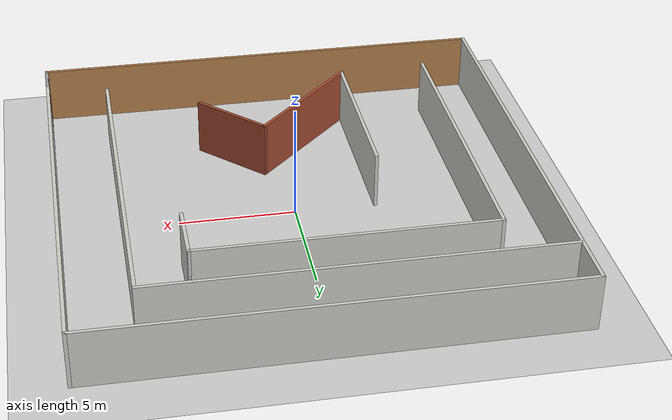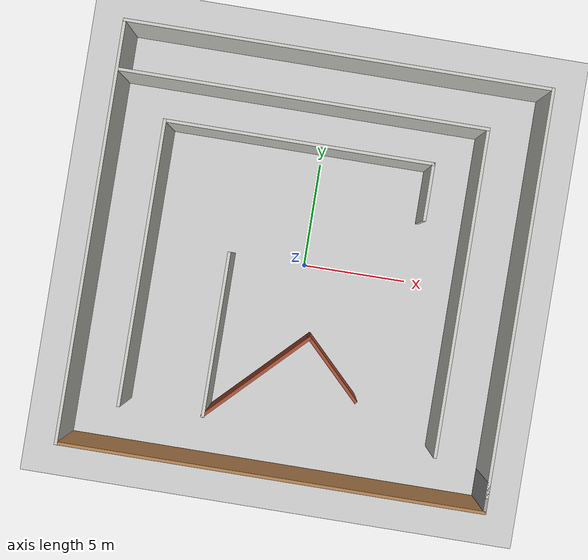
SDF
<sdf version="1.7">
 <world name="default">
  <light name="sun" type="directional">
   <pose>0 0 10 0 -0 0</pose>
   <diffuse>0.8 0.8 0.8 1</diffuse>
   <specular>0.2 0.2 0.2 1</specular>
   <attenuation>
    <range>1000</range>
    <constant>0.9</constant>
    <linear>0.01</linear>
    <quadratic>0.001</quadratic>
   </attenuation>
   <direction>-0.5 0.1 -0.9</direction>
   <spot><inner_angle>0</inner_angle><outer_angle>0</outer_angle><falloff>0</falloff></spot>
  </light>
  <model name="ground_plane">
   <static>1</static>
   <link name="link">
    <collision name="collision">
     <geometry><plane><normal>0 0 1</normal><size>100 100</size></plane></geometry>
     <surface>
      <contact><collide_bitmask>65535</collide_bitmask></contact>
      <friction><ode><mu>100</mu><mu2>50</mu2></ode></friction>
     </surface>
    </collision>
    <visual name="visual">
     <cast_shadows>0</cast_shadows>
     <geometry><plane><normal>0 0 1</normal><size>100 100</size></plane></geometry>
     <material>
      <script><uri>file://media/materials/scripts/gazebo.material</uri><name>Gazebo/Grey</name></script>
     </material>
    </visual>
   </link>
  </model>
  <gravity>0 0 -9.8</gravity>
  <magnetic_field>6e-06 2.3e-05 -4.2e-05</magnetic_field>
  <atmosphere type="adiabatic"/>
  <physics type="ode">
   <max_step_size>0.001</max_step_size>
   <real_time_factor>1</real_time_factor>
   <real_time_update_rate>1000</real_time_update_rate>
  </physics>
  <scene><ambient>0.4 0.4 0.4 1</ambient><background>0.7 0.7 0.7 1</background><shadows>1</shadows></scene>
  <spherical_coordinates>
   <surface_model>EARTH_WGS84</surface_model>
   <latitude_deg>0</latitude_deg>
   <longitude_deg>0</longitude_deg>
   <elevation>0</elevation>
   <heading_deg>0</heading_deg>
  </spherical_coordinates>
  <model name="Untitled">
   <pose>0.0221 -0.0526 0 0 -0 0</pose>
   <link name="Wall_1">
    <collision name="Wall_1_Collision">
     <geometry><box><size>19.25 0.15 2.5</size></box></geometry>
     <pose>0 0 1.25 0 -0 0</pose>
    </collision>
    <visual name="Wall_1_Visual">
     <pose>0 0 1.25 0 -0 0</pose>
     <geometry><box><size>19.25 0.15 2.5</size></box></geometry>
     <material>
      <script><uri>file://media/materials/scripts/gazebo.material</uri><name>Gazebo/CeilingTiled</name></script>
      <ambient>1 1 1 1</ambient>
     </material>
     <meta><layer>0</layer></meta>
    </visual>
    <pose>10.05 0.375 0 0 -0 1.5708</pose>
   </link>
   <link name="Wall_11">
    <collision name="Wall_11_Collision">
     <geometry><box><size>13.5 0.15 2.5</size></box></geometry>
     <pose>0 0 1.25 0 -0 0</pose>
    </collision>
    <visual name="Wall_11_Visual">
     <pose>0 0 1.25 0 -0 0</pose>
     <geometry><box><size>13.5 0.15 2.5</size></box></geometry>
     <material>
      <script><uri>file://media/materials/scripts/gazebo.material</uri><name>Gazebo/CeilingTiled</name></script>
      <ambient>0.760784 0.662745 0.627451 1</ambient>
     </material>
     <meta><layer>0</layer></meta>
    </visual>
    <pose>-7.47151 -1.04756 0 0 -0 1.5708</pose>
   </link>
   <link name="Wall_12">
    <collision name="Wall_12_Collision">
     <geometry><box><size>12.75 0.15 2.5</size></box></geometry>
     <pose>0 0 1.25 0 -0 0</pose>
    </collision>
    <visual name="Wall_12_Visual">
     <pose>0 0 1.25 0 -0 0</pose>
     <geometry><box><size>12.75 0.15 2.5</size></box></geometry>
     <material>
      <script><uri>file://media/materials/scripts/gazebo.material</uri><name>Gazebo/CeilingTiled</name></script>
      <ambient>1 1 1 1</ambient>
     </material>
     <meta><layer>0</layer></meta>
    </visual>
    <pose>-1.17151 5.62744 0 0 -0 0</pose>
   </link>
   <link name="Wall_13">
    <collision name="Wall_13_Collision">
     <geometry><box><size>2.75 0.15 2.5</size></box></geometry>
     <pose>0 0 1.25 0 -0 0</pose>
    </collision>
    <visual name="Wall_13_Visual">
     <pose>0 0 1.25 0 -0 0</pose>
     <geometry><box><size>2.75 0.15 2.5</size></box></geometry>
     <material>
      <script><uri>file://media/materials/scripts/gazebo.material</uri><name>Gazebo/CeilingTiled</name></script>
      <ambient>1 1 1 1</ambient>
     </material>
     <meta><layer>0</layer></meta>
    </visual>
    <pose>5.12849 4.32744 0 0 -0 -1.5708</pose>
   </link>
   <link name="Wall_17">
    <collision name="Wall_17_Collision">
     <geometry><box><size>7.75 0.15 2.5</size></box></geometry>
     <pose>0 0 1.25 0 -0 0</pose>
    </collision>
    <visual name="Wall_17_Visual">
     <pose>0 0 1.25 0 -0 0</pose>
     <geometry><box><size>7.75 0.15 2.5</size></box></geometry>
     <material>
      <script><uri>file://media/materials/scripts/gazebo.material</uri><name>Gazebo/CeilingTiled</name></script>
      <ambient>1 1 1 1</ambient>
     </material>
     <meta><layer>0</layer></meta>
    </visual>
    <pose>-3.53972 -3.77437 0 0 -0 -1.5708</pose>
   </link>
   <link name="Wall_18">
    <collision name="Wall_18_Collision">
     <geometry><box><size>6.25 0.15 2.5</size></box></geometry>
     <pose>0 0 1.25 0 -0 0</pose>
    </collision>
    <visual name="Wall_18_Visual">
     <pose>0 0 1.25 0 -0 0</pose>
     <geometry><box><size>6.25 0.15 2.5</size></box></geometry>
     <material>
      <script><uri>file://media/materials/scripts/gazebo.material</uri><name>Gazebo/Bricks</name></script>
      <ambient>1 1 1 1</ambient>
     </material>
     <meta><layer>0</layer></meta>
    </visual>
    <pose>-1.38304 -5.4177 0 0 -0 0.785398</pose>
   </link>
   <link name="Wall_19">
    <collision name="Wall_19_Collision">
     <geometry><box><size>3.75 0.15 2.5</size></box></geometry>
     <pose>0 0 1.25 0 -0 0</pose>
    </collision>
    <visual name="Wall_19_Visual">
     <pose>0 0 1.25 0 -0 0</pose>
     <geometry><box><size>3.75 0.15 2.5</size></box></geometry>
     <material>
      <script><uri>file://media/materials/scripts/gazebo.material</uri><name>Gazebo/Bricks</name></script>
      <ambient>1 1 1 1</ambient>
     </material>
     <meta><layer>0</layer></meta>
    </visual>
    <pose>2.04643 -4.53381 0 0 -0 -0.785398</pose>
   </link>
   <link name="Wall_2">
    <collision name="Wall_2_Collision">
     <geometry><box><size>20.25 0.15 2.5</size></box></geometry>
     <pose>0 0 1.25 0 -0 0</pose>
    </collision>
    <visual name="Wall_2_Visual">
     <pose>0 0 1.25 0 -0 0</pose>
     <geometry><box><size>20.25 0.15 2.5</size></box></geometry>
     <material>
      <script><uri>file://media/materials/scripts/gazebo.material</uri><name>Gazebo/CeilingTiled</name></script>
      <ambient>1 1 1 1</ambient>
     </material>
     <meta><layer>0</layer></meta>
    </visual>
    <pose>-0 9.925 0 0 -0 3.14159</pose>
   </link>
   <link name="Wall_3">
    <collision name="Wall_3_Collision">
     <geometry><box><size>20 0.15 2.5</size></box></geometry>
     <pose>0 0 1.25 0 -0 0</pose>
    </collision>
    <visual name="Wall_3_Visual">
     <pose>0 0 1.25 0 -0 0</pose>
     <geometry><box><size>20 0.15 2.5</size></box></geometry>
     <material>
      <script><uri>file://media/materials/scripts/gazebo.material</uri><name>Gazebo/CeilingTiled</name></script>
      <ambient>1 1 1 1</ambient>
     </material>
     <meta><layer>0</layer></meta>
    </visual>
    <pose>-10.05 -0 0 0 -0 -1.5708</pose>
   </link>
   <link name="Wall_5">
    <collision name="Wall_5_Collision">
     <geometry><box><size>20.25 0.15 2.5</size></box></geometry>
     <pose>0 0 1.25 0 -0 0</pose>
    </collision>
    <visual name="Wall_5_Visual">
     <pose>0 0 1.25 0 -0 0</pose>
     <geometry><box><size>20.25 0.15 2.5</size></box></geometry>
     <material>
      <script><uri>file://media/materials/scripts/gazebo.material</uri><name>Gazebo/Wood</name></script>
      <ambient>1 1 1 1</ambient>
     </material>
     <meta><layer>0</layer></meta>
    </visual>
    <pose>-0 -9.925 0 0 -0 0</pose>
   </link>
   <link name="Wall_6">
    <collision name="Wall_6_Collision">
     <geometry><box><size>1.5 0.15 2.5</size></box></geometry>
     <pose>0 0 1.25 0 -0 0</pose>
    </collision>
    <visual name="Wall_6_Visual">
     <pose>0 0 1.25 0 -0 0</pose>
     <geometry><box><size>1.5 0.15 2.5</size></box></geometry>
     <material>
      <script><uri>file://media/materials/scripts/gazebo.material</uri><name>Gazebo/Grey</name></script>
      <ambient>1 1 1 1</ambient>
     </material>
     <meta><layer>0</layer></meta>
    </visual>
    <pose>10.05 -9.25 0 0 -0 1.5708</pose>
   </link>
   <link name="Wall_8">
    <collision name="Wall_8_Collision">
     <geometry><box><size>17.5 0.15 2.5</size></box></geometry>
     <pose>0 0 1.25 0 -0 0</pose>
    </collision>
    <visual name="Wall_8_Visual">
     <pose>0 0 1.25 0 -0 0</pose>
     <geometry><box><size>17.5 0.15 2.5</size></box></geometry>
     <material>
      <script><uri>file://media/materials/scripts/gazebo.material</uri><name>Gazebo/CeilingTiled</name></script>
      <ambient>1 1 1 1</ambient>
     </material>
     <meta><layer>0</layer></meta>
    </visual>
    <pose>-1.29651 7.62744 0 0 -0 0</pose>
   </link>
   <link name="Wall_9">
    <collision name="Wall_9_Collision">
     <geometry><box><size>15.5 0.15 2.5</size></box></geometry>
     <pose>0 0 1.25 0 -0 0</pose>
    </collision>
    <visual name="Wall_9_Visual">
     <pose>0 0 1.25 0 -0 0</pose>
     <geometry><box><size>15.5 0.15 2.5</size></box></geometry>
     <material>
      <script><uri>file://media/materials/scripts/gazebo.material</uri><name>Gazebo/CeilingTiled</name></script>
      <ambient>1 1 1 1</ambient>
     </material>
     <meta><layer>0</layer></meta>
    </visual>
    <pose>7.37849 -0.047562 0 0 -0 -1.5708</pose>
   </link>
   <static>1</static>
  </model>
 </world>
</sdf>
